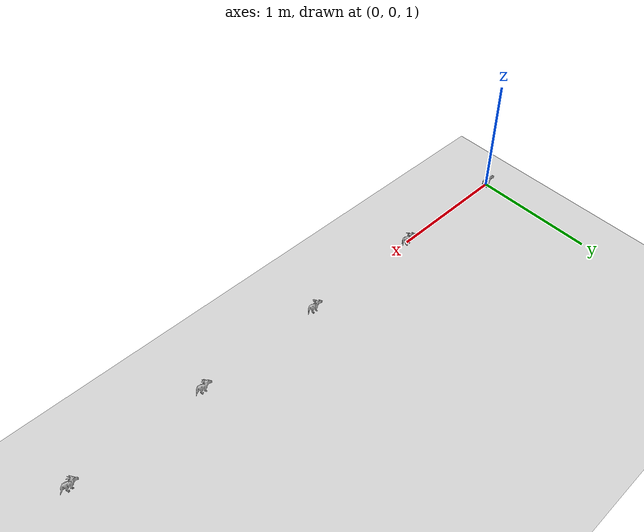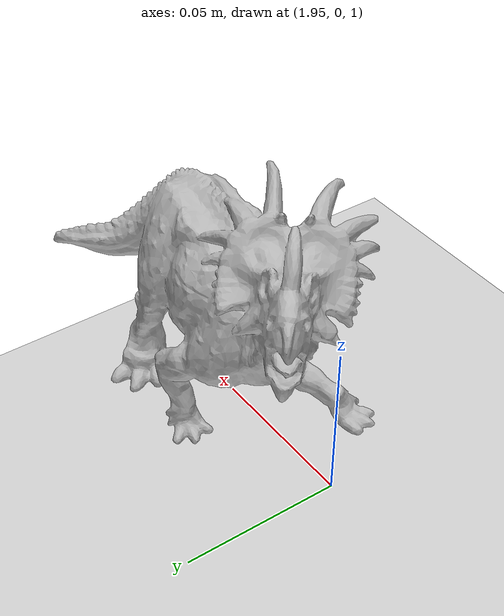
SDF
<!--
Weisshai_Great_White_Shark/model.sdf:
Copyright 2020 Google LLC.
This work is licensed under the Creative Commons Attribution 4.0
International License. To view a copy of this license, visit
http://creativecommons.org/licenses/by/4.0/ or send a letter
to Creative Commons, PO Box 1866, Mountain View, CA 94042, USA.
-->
<?xml version="1.0" ?>
<sdf version='1.7'>
  <world name='bounding_box_world'>

    <light type="directional" name="sun">
      <cast_shadows>true</cast_shadows>
      <pose>0 0 10 0 0 0</pose>
      <diffuse>0.8 0.8 0.8 1</diffuse>
      <specular>0.2 0.2 0.2 1</specular>
      <attenuation>
        <range>1000</range>
        <constant>0.9</constant>
        <linear>0.01</linear>
        <quadratic>0.001</quadratic>
      </attenuation>
      <direction>-0.5 0.1 -0.9</direction>
    </light>

    <model name="ground_plane">
      <static>true</static>
      <link name="link">
        <collision name="collision">
          <geometry>
            <plane>
              <normal>0 0 1</normal>
              <size>100 100</size>
            </plane>
          </geometry>
        </collision>
        <visual name="visual">
          <geometry>
            <plane>
              <normal>0 0 1</normal>
              <size>100 100</size>
            </plane>
          </geometry>
          <material>
            <ambient>0.8 0.8 0.8 1</ambient>
            <diffuse>0.8 0.8 0.8 1</diffuse>
            <specular>0.8 0.8 0.8 1</specular>
          </material>
        </visual>
      </link>
    </model>
    <include>
      <name>Weisshai_Great_White_Shark</name>
      <uri>Weisshai_Great_White_Shark</uri>
      <pose>0.0 0 1 0 0 0</pose>
    </include>
    <include>
      <name>Vtech_Roll_Learn_Turtle</name>
      <uri>Vtech_Roll_Learn_Turtle</uri>
      <pose>1.0 0 1 0 0 0</pose>
    </include>
    <include>
      <name>Sootheze_Toasty_Orca</name>
      <uri>Sootheze_Toasty_Orca</uri>
      <pose>2.0 0 1 0 0 0</pose>
    </include>
    <include>
      <name>Dino_3</name>
      <uri>Dino_3</uri>
      <pose>3.0 0 1 0 0 0</pose>
    </include>
    <include>
      <name>Dino_4</name>
      <uri>Dino_4</uri>
      <pose>4.0 0 1 0 0 0</pose>
    </include>
  </world>
</sdf>

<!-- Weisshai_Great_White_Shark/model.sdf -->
<sdf version="1.6">
  <model name="Weisshai_Great_White_Shark">
    <link name="link_0">
      <inertial>
        <pose>0.010357360828107343 -0.0086274991875561063 0.023018258050188933 0 0 0</pose>
        <mass>0.11416179646964589</mass>
        <inertia>
          <ixx>0.00016701031910554392</ixx>
          <ixy>2.7426875913777891e-05</ixy>
          <ixz>-1.1721256319724282e-06</ixz>
          <iyy>4.4020580947114147e-05</iyy>
          <iyz>1.1065720747416149e-07</iyz>
          <izz>0.00018861388590194129</izz>
        </inertia>
      </inertial>
      <visual name="visual">
        <geometry>
          <mesh>
            <uri>meshes/model.obj</uri>
          </mesh>
        </geometry>
      </visual>
      <collision name="collision_0">
        <density>930.0</density> <!-- Natural rubber -->
        <geometry>
          <mesh>
            <uri>meshes/model.obj</uri>
          </mesh>
        </geometry>
      </collision>
    </link>
  </model>
</sdf>

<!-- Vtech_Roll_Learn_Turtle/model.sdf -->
<sdf version="1.6">
  <model name="Vtech_Roll_Learn_Turtle">
    <link name="link_0">
      <inertial>
        <pose>-0.0074253953550022459 0.0096194591663119992 0.053467291776217729 0 0 0</pose>
        <mass>1.5637666710232736</mass>
        <inertia>
          <ixx>0.0049467236624558507</ixx>
          <ixy>-1.6762027391352769e-05</ixy>
          <ixz>1.111244657988119e-05</ixz>
          <iyy>0.0030870699418469052</iyy>
          <iyz>0.00043077362035152125</iyz>
          <izz>0.0058365300717086186</izz>
        </inertia>
      </inertial>
      <visual name="visual">
        <geometry>
          <mesh>
            <uri>meshes/model.obj</uri>
          </mesh>
        </geometry>
      </visual>
      <collision name="collision_0">
        <density>930.0</density> <!-- Natural rubber -->
        <geometry>
          <mesh>
            <uri>meshes/model.obj</uri>
          </mesh>
        </geometry>
      </collision>
    </link>
  </model>
</sdf>

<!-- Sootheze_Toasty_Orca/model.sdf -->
<sdf version="1.6">
  <model name="Sootheze_Toasty_Orca">
    <link name="link_0">
      <inertial>
        <pose>-0.0028620614476813073 -0.029866763776850096 0.039500565043179565 0 0 0</pose>
        <mass>2.7709261374384613</mass>
        <inertia>
          <ixx>0.022765333298023719</ixx>
          <ixy>0.0052765576196554115</ixy>
          <ixz>6.05309629651895e-05</ixz>
          <iyy>0.0065747538171298308</iyy>
          <iyz>0.00043423853904752454</iyz>
          <izz>0.026041700222344481</izz>
        </inertia>
      </inertial>
      <visual name="visual">
        <geometry>
          <mesh>
            <uri>meshes/model.obj</uri>
          </mesh>
        </geometry>
      </visual>
      <collision name="collision_0">
        <density>930.0</density> <!-- Natural rubber -->
        <geometry>
          <mesh>
            <uri>meshes/model.obj</uri>
          </mesh>
        </geometry>
      </collision>
    </link>
  </model>
</sdf>

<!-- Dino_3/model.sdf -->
<sdf version="1.6">
  <model name="Dino_3">
    <link name="link_0">
      <inertial>
        <pose>-0.023575507385151989 -0.0024988230170349913 0.084493885054633136 0 0 0</pose>
        <mass>0.24695994986047218</mass>
        <inertia>
          <ixx>0.00017943872114715582</ixx>
          <ixy>3.5000010016506176e-05</ixy>
          <ixz>8.3435345072438644e-05</ixz>
          <iyy>0.00089130840000290065</iyy>
          <iyz>-2.4869247066611206e-06</iyz>
          <izz>0.00078520256322431054</izz>
        </inertia>
      </inertial>
      <visual name="visual">
        <geometry>
          <mesh>
            <uri>meshes/model.obj</uri>
          </mesh>
        </geometry>
      </visual>
      <collision name="collision_0">
        <density>930.0</density> <!-- Natural rubber -->
        <geometry>
          <mesh>
            <uri>meshes/model.obj</uri>
          </mesh>
        </geometry>
      </collision>
    </link>
  </model>
</sdf>

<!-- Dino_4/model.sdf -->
<sdf version="1.6">
  <model name="Dino_4">
    <link name="link_0">
      <inertial>
        <pose>-0.00052619477972370618 0.0033789550447576645 0.043057332789254492 0 0 0</pose>
        <mass>0.089827428148718969</mass>
        <inertia>
          <ixx>3.4235198916394776e-05</ixx>
          <ixy>9.0475239933557228e-06</ixy>
          <ixz>1.6296192642546136e-05</ixz>
          <iyy>8.4944105824345738e-05</iyy>
          <iyz>-1.9529091247602473e-06</iyz>
          <izz>7.0709215980245858e-05</izz>
        </inertia>
      </inertial>
      <visual name="visual">
        <geometry>
          <mesh>
            <uri>meshes/model.obj</uri>
          </mesh>
        </geometry>
      </visual>
      <collision name="collision_0">
        <density>930.0</density> <!-- Natural rubber -->
        <geometry>
          <mesh>
            <uri>meshes/model.obj</uri>
          </mesh>
        </geometry>
      </collision>
    </link>
  </model>
</sdf>
